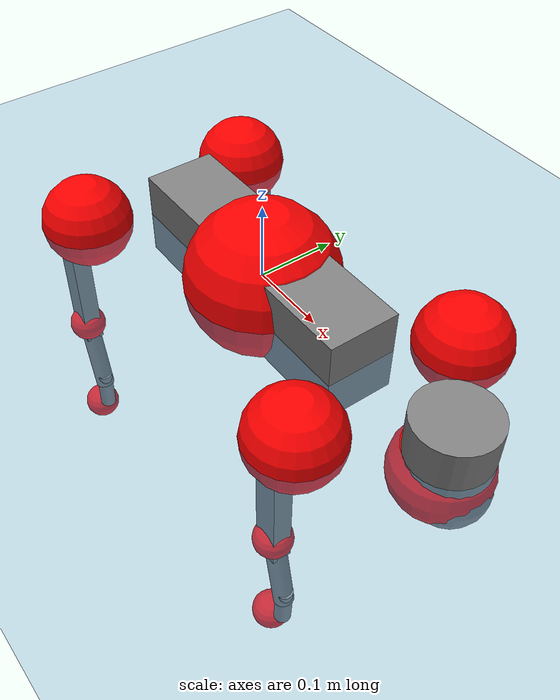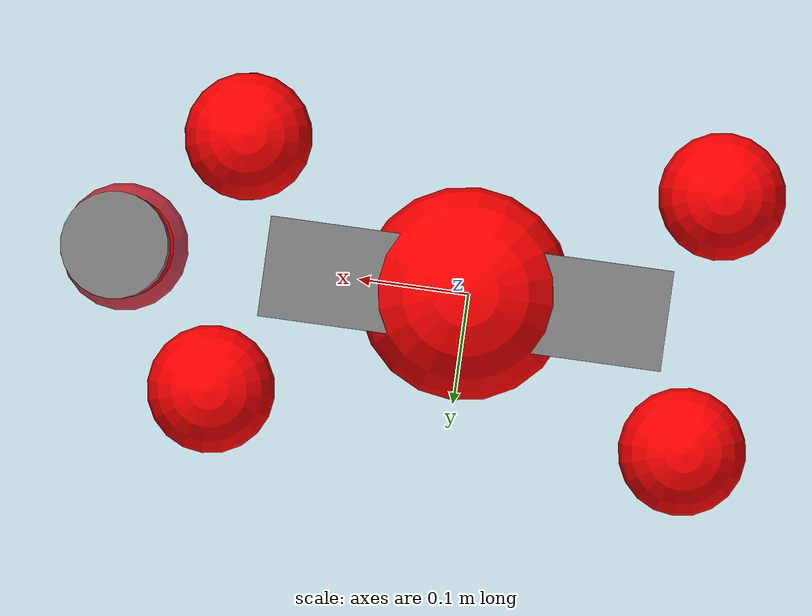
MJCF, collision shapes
<mujoco model="go2">
  <compiler angle="radian" assetdir="assets" balanceinertia="true" inertiafromgeom="false"/>

  <option timestep="0.005" density="1.2" viscosity="2e-05"/>

  <size nkey="1"/>

  <visual>
    <quality shadowsize="8192"/>
    <map shadowclip="0.5"/>
  </visual>

  <default>
    <default class="/">
      <geom contype="0" conaffinity="0" group="1" solref="-1000 -80"/>
      <site size="0.01 0.005 0.005" group="5"/>
      <general forcelimited="true" biastype="affine" gainprm="20" biasprm="0 -20 -0.5"/>
      <default class="go2">
        <joint armature="0.01" damping="0.01" frictionloss="0.2"/>
        <geom condim="1" margin="0.001"/>
        <default class="visual">
          <geom type="mesh" group="2"/>
        </default>
        <default class="collision">
          <geom group="3"/>
          <default class="foot">
            <geom size="0.022 0 0" condim="6" priority="1" friction="0.8 0.02 0.01" solimp="0.015 1 0.022"/>
          </default>
        </default>
        <default class="reward_collision_sphere">
          <geom group="5" rgba="1 0 0 1"/>
        </default>
      </default>
    </default>
  </default>

  <asset>
    <texture type="skybox" colorspace="auto" name="//unnamed_texture_0" builtin="gradient" rgb1="0.95 0.95 0.95" rgb2="0.95 0.95 0.95" width="100" height="600"/>
    <texture type="2d" colorspace="auto" name="texplane" builtin="checker" rgb1="0.345 0.575 0.748" rgb2="0.345 0.575 0.748" markrgb="1 1 1" width="512" height="512"/>
    <material name="MatPlane" class="/" texture="texplane" texuniform="true" texrepeat="2 2" specular="0.9"/>
    <material name="metal" class="/" rgba="0.9 0.95 0.95 1"/>
    <material name="black" class="/" rgba="0 0 0 1"/>
    <material name="white" class="/"/>
    <material name="gray" class="/" rgba="0.671705 0.692426 0.77427 1"/>
    <mesh name="base_0" class="/" file="base_0.obj"/>
    <mesh name="base_1" class="/" file="base_1.obj"/>
    <mesh name="base_2" class="/" file="base_2.obj"/>
    <mesh name="base_3" class="/" file="base_3.obj"/>
    <mesh name="base_4" class="/" file="base_4.obj"/>
    <mesh name="hip_0" class="/" file="hip_0.obj"/>
    <mesh name="hip_1" class="/" file="hip_1.obj"/>
    <mesh name="thigh_0" class="/" file="thigh_0.obj"/>
    <mesh name="thigh_1" class="/" file="thigh_1.obj"/>
    <mesh name="thigh_mirror_0" class="/" file="thigh_mirror_0.obj"/>
    <mesh name="thigh_mirror_1" class="/" file="thigh_mirror_1.obj"/>
    <mesh name="calf_0" class="/" file="calf_0.obj"/>
    <mesh name="calf_1" class="/" file="calf_1.obj"/>
    <mesh name="calf_mirror_0" class="/" file="calf_mirror_0.obj"/>
    <mesh name="calf_mirror_1" class="/" file="calf_mirror_1.obj"/>
    <mesh name="foot" class="/" file="foot.obj"/>
  </asset>

  <worldbody>
    <geom name="floor" class="/" size="100 100 0.125" type="plane" group="0" material="MatPlane"/>
    <light name="toplight_shadow" class="/" pos="0 0 5" dir="0.0990148 0.0990148 -0.990148" type="directional" ambient="0.04 0.04 0.04" diffuse="0.55 0.55 0.55" specular="0.12 0.12 0.12"/>
    <light name="toplight_fill" class="/" pos="0 0 5" dir="0.0990148 0.0990148 -0.990148" type="directional" castshadow="false" ambient="0.04 0.04 0.04" diffuse="0.3 0.3 0.3" specular="0.08 0.08 0.08"/>
    <body name="trunk" childclass="go2" pos="0.00260488 -0.000507175 -0.000404848" quat="1 0.00042916 -0.00020307 -0.000241593">
      <inertial pos="0.0233995 -0.000412297 -0.00426289" quat="0.00140106 0.711997 -0.00176055 0.702179" mass="6.30455" diaginertia="0.199337 0.105196 0.00737171"/>
      <joint name="//unnamed_joint_0" type="free" armature="0" damping="0" frictionloss="0"/>
      <geom name="//unnamed_geom_1" class="visual" material="black" mesh="base_0"/>
      <geom name="//unnamed_geom_2" class="visual" material="black" mesh="base_1"/>
      <geom name="//unnamed_geom_3" class="visual" material="black" mesh="base_2"/>
      <geom name="//unnamed_geom_4" class="visual" material="white" mesh="base_3"/>
      <geom name="//unnamed_geom_5" class="visual" material="gray" mesh="base_4"/>
      <geom name="trunk_1" class="collision" size="0.182532 0.0453662 0.0553128" type="box"/>
      <geom name="trunk_2" class="collision" size="0.04852 0.043668" pos="0.318811 0 0.00786566" type="cylinder"/>
      <geom name="trunk_3" class="collision" size="0.0456088" pos="0.32776 0 -0.0471939"/>
      <geom name="//unnamed_geom_9" class="reward_collision_sphere" size="0.09704"/>
      <geom name="//unnamed_geom_10" class="reward_collision_sphere" size="0.058224" pos="0.313218 0 -0.0353955"/>
      <site name="imu" pos="-0.0338754 0.00204092 0.0197523" size="0.009704"/>
      <camera name="track" pos="0 -2.012 0" quat="0.707107 0.707107 0 0" mode="trackcom"/>
      <camera name="ego_camera" pos="0.349014 0 0.0353955" quat="-0.5 -0.5 0.5 0.5"/>
      <body name="FL_hip" pos="0.216498 0.0468687 -0.000426683" quat="0.999999 -0.00105203 0.000224873 -5.1263e-05">
        <inertial pos="-0.0086602 0.00254364 -0.000395229" quat="0.497098 0.498016 0.506576 0.498251" mass="0.62327" diaginertia="0.00155716 0.000596146 0.00014396"/>
        <joint name="FL_hip_joint" pos="0 0 0" axis="0.999914 0.0130287 -0.00143074" range="-1.05778 1.05029" armature="0.0083836" damping="0.0067644" frictionloss="0.196393"/>
        <geom name="//unnamed_geom_11" class="visual" material="metal" mesh="hip_0"/>
        <geom name="//unnamed_geom_12" class="visual" material="gray" mesh="hip_1"/>
        <geom name="//unnamed_geom_13" class="collision" size="0.0446384 0.019408" pos="0 0.0804799 0" quat="0.707107 0.707107 0 0" type="cylinder"/>
        <geom name="//unnamed_geom_14" class="reward_collision_sphere" size="0.058224" pos="0 0.0704199 0"/>
        <body name="FL_thigh" pos="-0.00200588 0.0958044 5.51272e-06" quat="1 6.68332e-05 -7.8493e-05 -5.30702e-05">
          <inertial pos="-0.0046097 -0.0221788 -0.0282734" quat="0.829595 0.0844485 -0.0199213 0.551583" mass="1.07062" diaginertia="0.0105801 0.00608127 0.000265879"/>
          <joint name="FL_thigh_joint" pos="0 0 0" axis="-0.0127438 0.999914 0.00314021" range="-1.57689 3.49519" armature="0.0109515" damping="0" frictionloss="0.185723"/>
          <geom name="//unnamed_geom_15" class="visual" material="metal" mesh="thigh_0"/>
          <geom name="//unnamed_geom_16" class="visual" material="gray" mesh="thigh_1"/>
          <geom name="//unnamed_geom_17" class="collision" size="0.103348 0.0118874 0.0164968" pos="0 0 -0.0837692" quat="0.707107 0 0.707107 0" type="box"/>
          <body name="FL_calf" pos="-0.000468821 -0.00306848 -0.16724" quat="1 -0.000186079 -0.000834763 -0.000235806">
            <inertial pos="0.00747444 0.000367186 -0.111398" quat="0.714398 -0.00896804 0.00202729 0.699679" mass="0.226501" diaginertia="0.00257733 0.00152194 1.57196e-05"/>
            <joint name="FL_calf_joint" pos="0 0 0" axis="0.00981187 0.999952 -0.000451945" stiffness="0.00183975" range="-2.72794 -0.826873" armature="0.00966901" damping="0" frictionloss="0.195331"/>
            <geom name="//unnamed_geom_18" class="visual" material="gray" mesh="calf_0"/>
            <geom name="//unnamed_geom_19" class="visual" material="black" mesh="calf_1"/>
            <geom name="FL_calf0" class="collision" size="0.0116448 0.058224" pos="0.00894909 0 -0.0471939" quat="0.994493 0 -0.104807 0" type="cylinder"/>
            <geom name="//unnamed_geom_21" class="collision" size="0.0106744 0.031538" pos="0.0223727 0 -0.116412" quat="0.999688 0 0.0249974 0" type="cylinder"/>
            <geom name="//unnamed_geom_22" class="visual" pos="0 0 -0.167538" quat="1 0 0 0" material="black" mesh="foot"/>
            <geom name="FL_foot" class="foot" size="0.0197855" pos="-0.00223727 0 -0.167538"/>
            <geom name="//unnamed_geom_24" class="reward_collision_sphere" size="0.02426"/>
            <geom name="//unnamed_geom_25" class="reward_collision_sphere" size="0.02426" pos="-0.00223727 0 -0.167538"/>
            <site name="FL_foot" class="foot" pos="-0.00223727 0 -0.167538" size="0.009704"/>
          </body>
        </body>
      </body>
      <body name="FR_hip" pos="0.214181 -0.0438821 -0.00196238" quat="1 2.10501e-05 7.23572e-05 8.24227e-05">
        <inertial pos="-0.00322989 -0.0028794 -0.00267821" quat="0.499366 0.503087 0.496374 0.501149" mass="0.636626" diaginertia="0.00159058 0.000623423 0.000149572"/>
        <joint name="FR_hip_joint" pos="0 0 0" axis="0.999934 0.00853355 -0.00769159" range="-1.10356 1.0499" armature="0.0095252" damping="0.0179041" frictionloss="0.170787"/>
        <geom name="//unnamed_geom_26" class="visual" pos="0 1.91161e-09 8.19931e-08" quat="4.63268e-05 1 0 0" material="metal" mesh="hip_0"/>
        <geom name="//unnamed_geom_27" class="visual" pos="0 3.09895e-09 -2.028e-07" quat="4.63268e-05 1 0 0" material="gray" mesh="hip_1"/>
        <geom name="//unnamed_geom_28" class="collision" size="0.0446384 0.019408" pos="0 -0.0804799 0" quat="0.707107 0.707107 0 0" type="cylinder"/>
        <geom name="//unnamed_geom_29" class="reward_collision_sphere" size="0.058224" pos="0 -0.0704199 0"/>
        <body name="FR_thigh" pos="0.000927554 -0.0955644 0.00154359" quat="1 1.65202e-06 -6.91934e-06 6.77452e-06">
          <inertial pos="-0.00404345 0.0251515 -0.0266207" quat="0.551114 -0.0192289 0.0844011 0.829928" mass="1.04177" diaginertia="0.0104473 0.00590558 0.000261584"/>
          <joint name="FR_thigh_joint" pos="0 0 0" axis="-0.0061626 -0.999977 0.00276771" range="-3.48695 1.57418" armature="0.0102574" damping="0.00712642" frictionloss="0.185404"/>
          <geom name="//unnamed_geom_30" class="visual" material="metal" mesh="thigh_mirror_0"/>
          <geom name="//unnamed_geom_31" class="visual" material="gray" mesh="thigh_mirror_1"/>
          <geom name="//unnamed_geom_32" class="collision" size="0.103348 0.0118874 0.0164968" pos="0 0 -0.0837692" quat="0.707107 0 0.707107 0" type="box"/>
          <body name="FR_calf" pos="-0.000453567 -0.000183252 -0.164893" quat="0.999999 0.00125172 0.000154113 0.000405847">
            <inertial pos="0.00958353 -0.000561127 -0.109118" quat="0.704002 -0.00838993 0.000596802 0.710148" mass="0.215413" diaginertia="0.00264162 0.0015662 1.66563e-05"/>
            <joint name="FR_calf_joint" pos="0 0 0" axis="0.000889339 -0.999966 -0.00813968" stiffness="0.00839378" range="0.781755 2.71271" armature="0.0095088" damping="0.0220109" frictionloss="0.219091"/>
            <geom name="//unnamed_geom_33" class="visual" material="gray" mesh="calf_mirror_0"/>
            <geom name="//unnamed_geom_34" class="visual" material="black" mesh="calf_mirror_1"/>
            <geom name="FR_calf0" class="collision" size="0.0126152 0.058224" pos="0.0111864 0 -0.0471939" quat="0.995004 0 -0.0998334 0" type="cylinder"/>
            <geom name="//unnamed_geom_36" class="collision" size="0.0106744 0.031538" pos="0.0223727 0 -0.116412" quat="0.999688 0 0.0249974 0" type="cylinder"/>
            <geom name="//unnamed_geom_37" class="visual" pos="0 0 -0.167538" quat="1 0 0 0" material="black" mesh="foot"/>
            <geom name="FR_foot" class="foot" size="0.0218078" pos="-0.00223727 0 -0.167538"/>
            <geom name="//unnamed_geom_39" class="reward_collision_sphere" size="0.02426"/>
            <geom name="//unnamed_geom_40" class="reward_collision_sphere" size="0.02426" pos="-0.00223727 0 -0.167538"/>
            <site name="FR_foot" class="foot" pos="-0.00223727 0 -0.167538" size="0.009704"/>
          </body>
        </body>
      </body>
      <body name="RL_hip" pos="-0.214124 0.0447266 0.00122787" quat="1 -9.15824e-05 9.13344e-05 -8.31915e-05">
        <inertial pos="0.00872993 -0.000476901 -0.000313073" quat="0.5026 0.499281 0.506522 0.491474" mass="0.620619" diaginertia="0.00157553 0.000618313 0.000140596"/>
        <joint name="RL_hip_joint" pos="0 0 0" axis="-0.999999 0.000719159 0.00132411" range="-1.01516 1.03146" armature="0.00967761" damping="0.0114347" frictionloss="0.201757"/>
        <geom name="//unnamed_geom_41" class="visual" pos="-2.89286e-09 0 -5.67067e-07" quat="4.63268e-05 0 1 0" material="metal" mesh="hip_0"/>
        <geom name="//unnamed_geom_42" class="visual" pos="-4.68967e-09 0 -5.02908e-07" quat="4.63268e-05 0 1 0" material="gray" mesh="hip_1"/>
        <geom name="//unnamed_geom_43" class="collision" size="0.0446384 0.019408" pos="0 0.0804799 0" quat="0.707107 0.707107 0 0" type="cylinder"/>
        <geom name="//unnamed_geom_44" class="reward_collision_sphere" size="0.058224" pos="0 0.0704199 0"/>
        <body name="RL_thigh" pos="0.000990653 0.0959632 1.21412e-05" quat="1 0.000196763 -0.000182579 4.0566e-05">
          <inertial pos="-0.00505499 -0.0196115 -0.0251353" quat="0.834872 0.0873172 -0.0218482 0.543035" mass="1.06344" diaginertia="0.0104528 0.00619555 0.000261674"/>
          <joint name="RL_thigh_joint" pos="0 0 0" axis="0.0093949 0.999953 -0.00252497" range="-0.491794 4.55851" armature="0.011043" damping="0.00168802" frictionloss="0.217767"/>
          <geom name="//unnamed_geom_45" class="visual" material="metal" mesh="thigh_0"/>
          <geom name="//unnamed_geom_46" class="visual" material="gray" mesh="thigh_1"/>
          <geom name="//unnamed_geom_47" class="collision" size="0.103348 0.0118874 0.0164968" pos="0 0 -0.0837692" quat="0.707107 0 0.707107 0" type="box"/>
          <body name="RL_calf" pos="-0.00164322 0.00216245 -0.170337" quat="0.999999 -0.000980929 0.000216723 0.000754681">
            <inertial pos="0.00729736 -0.000618805 -0.108648" quat="0.712695 0.00250711 -0.00535006 0.701449" mass="0.212349" diaginertia="0.00258728 0.00150265 1.60118e-05"/>
            <joint name="RL_calf_joint" pos="0 0 0" axis="-0.000896705 0.99996 0.00885787" range="-2.74288 -0.864292" armature="0.00916778" damping="0.0103747" frictionloss="0.173241"/>
            <geom name="//unnamed_geom_48" class="visual" material="gray" mesh="calf_0"/>
            <geom name="//unnamed_geom_49" class="visual" material="black" mesh="calf_1"/>
            <geom name="RL_calf0" class="collision" size="0.0126152 0.058224" pos="0.0111864 0 -0.0471939" quat="0.995004 0 -0.0998334 0" type="cylinder"/>
            <geom name="//unnamed_geom_51" class="collision" size="0.0106744 0.031538" pos="0.0223727 0 -0.116412" quat="0.999688 0 0.0249974 0" type="cylinder"/>
            <geom name="//unnamed_geom_52" class="visual" pos="0 0 -0.167538" quat="1 0 0 0" material="black" mesh="foot"/>
            <geom name="RL_foot" class="foot" size="0.0171413" pos="-0.00223727 0 -0.167538"/>
            <geom name="//unnamed_geom_54" class="reward_collision_sphere" size="0.02426"/>
            <geom name="//unnamed_geom_55" class="reward_collision_sphere" size="0.02426" pos="-0.00223727 0 -0.167538"/>
            <site name="RL_foot" class="foot" pos="-0.00223727 0 -0.167538" size="0.009704"/>
          </body>
        </body>
      </body>
      <body name="RR_hip" pos="-0.218673 -0.0485128 -0.000150841" quat="1 0.000177369 0.000276185 -0.000118448">
        <inertial pos="0.0077086 -0.00142933 -4.77848e-06" quat="0.503585 0.492372 0.506799 0.497117" mass="0.624686" diaginertia="0.00158155 0.00063144 0.000148216"/>
        <joint name="RR_hip_joint" pos="0 0 0" axis="-0.999904 0.0135266 0.00304146" stiffness="0.00190637" range="-1.04444 1.02865" armature="0.00998784" damping="0.00483836" frictionloss="0.195615"/>
        <geom name="//unnamed_geom_56" class="visual" pos="2.88896e-09 1.91161e-09 -6.4906e-07" quat="2.14617e-09 4.63268e-05 4.63268e-05 -1" material="metal" mesh="hip_0"/>
        <geom name="//unnamed_geom_57" class="visual" pos="4.69932e-09 3.09895e-09 -3.00108e-07" quat="2.14617e-09 4.63268e-05 4.63268e-05 -1" material="gray" mesh="hip_1"/>
        <geom name="//unnamed_geom_58" class="collision" size="0.0446384 0.019408" pos="0 -0.0804799 0" quat="0.707107 0.707107 0 0" type="cylinder"/>
        <geom name="//unnamed_geom_59" class="reward_collision_sphere" size="0.058224" pos="0 -0.0704199 0"/>
        <body name="RR_thigh" pos="0.000123246 -0.0956637 0.00124384" quat="1 3.35839e-06 -2.04901e-06 4.86403e-06">
          <inertial pos="-0.00506777 0.0221423 -0.0267167" quat="0.554511 -0.0326647 0.0859006 0.827086" mass="1.06546" diaginertia="0.0103376 0.00619037 0.000272935"/>
          <joint name="RR_thigh_joint" pos="0 0 0" axis="0.000292264 -0.99999 -0.0045359" range="-4.54519 0.51033" armature="0.0107599" damping="0.00447892" frictionloss="0.191081"/>
          <geom name="//unnamed_geom_60" class="visual" material="metal" mesh="thigh_mirror_0"/>
          <geom name="//unnamed_geom_61" class="visual" material="gray" mesh="thigh_mirror_1"/>
          <geom name="//unnamed_geom_62" class="collision" size="0.103348 0.0118874 0.0164968" pos="0 0 -0.0837692" quat="0.707107 0 0.707107 0" type="box"/>
          <body name="RR_calf" pos="0.000490217 -0.000671786 -0.167708" quat="1 0.000223475 -8.83126e-05 0.000329315">
            <inertial pos="0.00433759 -0.00202041 -0.108707" quat="0.702594 -0.00431558 0.00370824 0.711568" mass="0.22698" diaginertia="0.00255741 0.00155333 1.59923e-05"/>
            <joint name="RR_calf_joint" pos="0 0 0" axis="-0.00475111 -0.999985 -0.0028448" stiffness="0.0028496" range="0.852356 2.77917" armature="0.00976813" damping="0.00950826" frictionloss="0.220344"/>
            <geom name="//unnamed_geom_63" class="visual" material="gray" mesh="calf_mirror_0"/>
            <geom name="//unnamed_geom_64" class="visual" material="black" mesh="calf_mirror_1"/>
            <geom name="RR_calf0" class="collision" size="0.0126152 0.058224" pos="0.0111864 0 -0.0471939" quat="0.995004 0 -0.0998334 0" type="cylinder"/>
            <geom name="//unnamed_geom_66" class="collision" size="0.0106744 0.031538" pos="0.0223727 0 -0.116412" quat="0.999688 0 0.0249974 0" type="cylinder"/>
            <geom name="//unnamed_geom_67" class="visual" pos="0 0 -0.167538" quat="1 0 0 0" material="black" mesh="foot"/>
            <geom name="RR_foot" class="foot" size="0.0231724" pos="-0.00223727 0 -0.167538"/>
            <geom name="//unnamed_geom_69" class="reward_collision_sphere" size="0.02426"/>
            <geom name="//unnamed_geom_70" class="reward_collision_sphere" size="0.02426" pos="-0.00223727 0 -0.167538"/>
            <site name="RR_foot" class="foot" pos="-0.00223727 0 -0.167538" size="0.009704"/>
          </body>
        </body>
      </body>
    </body>
  </worldbody>

  <contact>
    <pair class="/" geom1="floor" geom2="FL_foot" name="//unnamed_contact_0"/>
    <pair class="/" geom1="floor" geom2="FR_foot" name="//unnamed_contact_1"/>
    <pair class="/" geom1="floor" geom2="RL_foot" name="//unnamed_contact_2"/>
    <pair class="/" geom1="floor" geom2="RR_foot" name="//unnamed_contact_3"/>
  </contact>

  <actuator>
    <general name="FL_hip" class="/" joint="FL_hip_joint" forcerange="-22.8858 22.8858" gainprm="19.4662" biasprm="0 -19.4662 -0.472916"/>
    <general name="FL_thigh" class="/" joint="FL_thigh_joint" forcerange="-20.9393 20.9393" gainprm="19.4662" biasprm="0 -19.4662 -0.472916"/>
    <general name="FL_calf" class="/" joint="FL_calf_joint" forcerange="-44.4036 44.4036" gainprm="19.4662" biasprm="0 -19.4662 -0.472916"/>
    <general name="FR_hip" class="/" joint="FR_hip_joint" forcerange="-22.8552 22.8552" gainprm="19.4662" biasprm="0 -19.4662 -0.472916"/>
    <general name="FR_thigh" class="/" joint="FR_thigh_joint" forcerange="-22.909 22.909" gainprm="19.4662" biasprm="0 -19.4662 -0.472916"/>
    <general name="FR_calf" class="/" joint="FR_calf_joint" forcerange="-46.3525 46.3525" gainprm="19.4662" biasprm="0 -19.4662 -0.472916"/>
    <general name="RL_hip" class="/" joint="RL_hip_joint" forcerange="-22.8774 22.8774" gainprm="19.4662" biasprm="0 -19.4662 -0.472916"/>
    <general name="RL_thigh" class="/" joint="RL_thigh_joint" forcerange="-24.1774 24.1774" gainprm="19.4662" biasprm="0 -19.4662 -0.472916"/>
    <general name="RL_calf" class="/" joint="RL_calf_joint" forcerange="-43.6331 43.6331" gainprm="19.4662" biasprm="0 -19.4662 -0.472916"/>
    <general name="RR_hip" class="/" joint="RR_hip_joint" forcerange="-22.5528 22.5528" gainprm="19.4662" biasprm="0 -19.4662 -0.472916"/>
    <general name="RR_thigh" class="/" joint="RR_thigh_joint" forcerange="-22.1035 22.1035" gainprm="19.4662" biasprm="0 -19.4662 -0.472916"/>
    <general name="RR_calf" class="/" joint="RR_calf_joint" forcerange="-39.8668 39.8668" gainprm="19.4662" biasprm="0 -19.4662 -0.472916"/>
  </actuator>

  <sensor>
    <gyro site="imu" name="imu_angular_velocity"/>
    <velocimeter site="imu" name="imu_linear_velocity"/>
    <framelinvel objtype="site" objname="FL_foot" name="FL_foot_global_linear_velocity"/>
    <framelinvel objtype="site" objname="FR_foot" name="FR_foot_global_linear_velocity"/>
    <framelinvel objtype="site" objname="RL_foot" name="RL_foot_global_linear_velocity"/>
    <framelinvel objtype="site" objname="RR_foot" name="RR_foot_global_linear_velocity"/>
  </sensor>

  <keyframe>
    <key name="home" qpos="0 0 0.325 1 0 0 0 0.1 0.8 -1.5 -0.1 -0.8 1.5 -0.1 0.8 -1.5 0.1 -0.8 1.5"/>
  </keyframe>
</mujoco>
